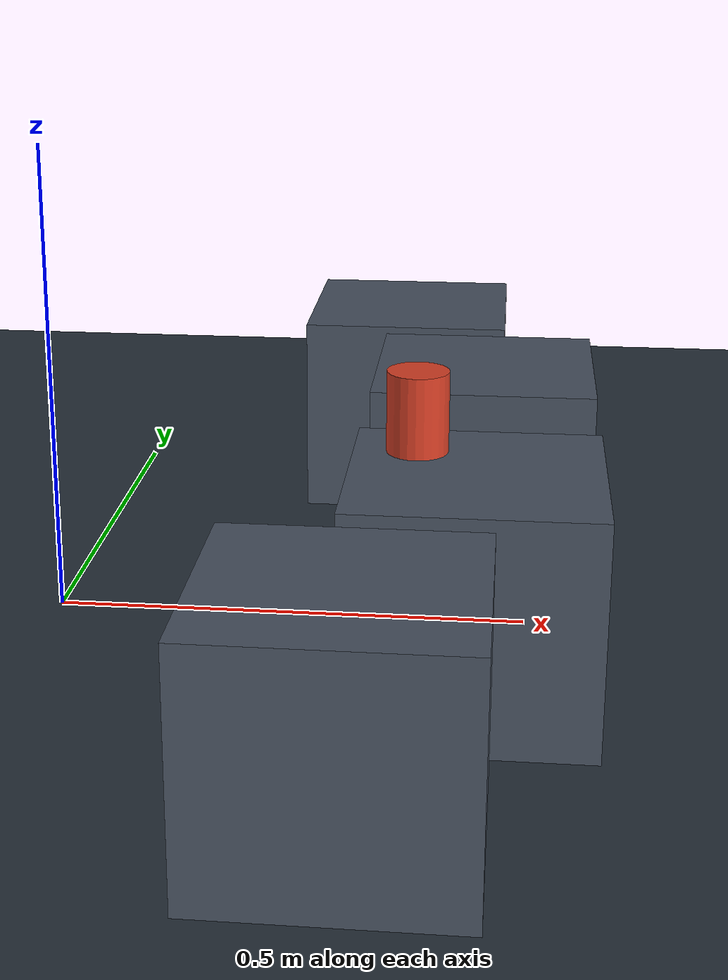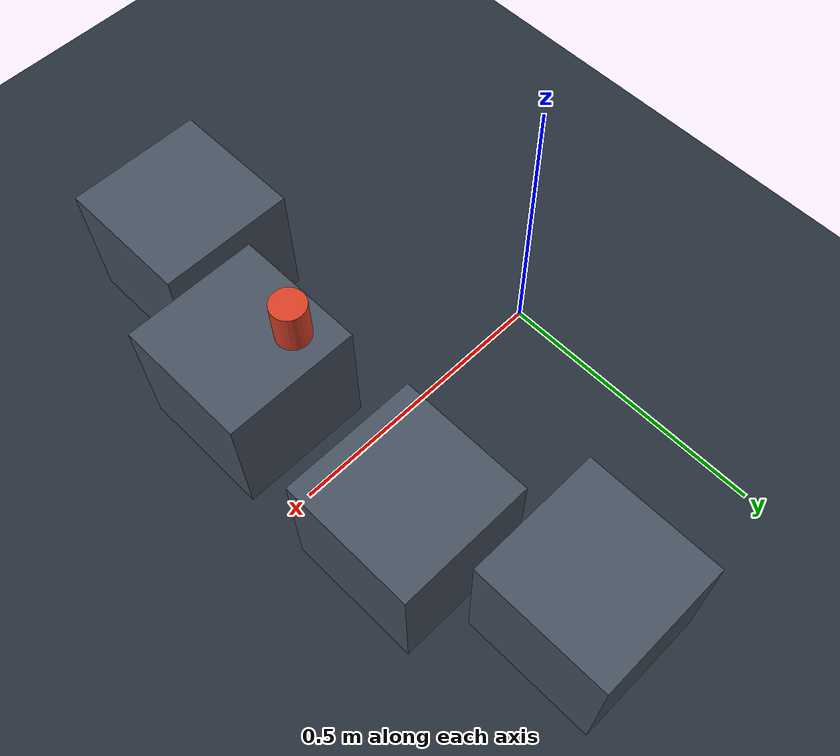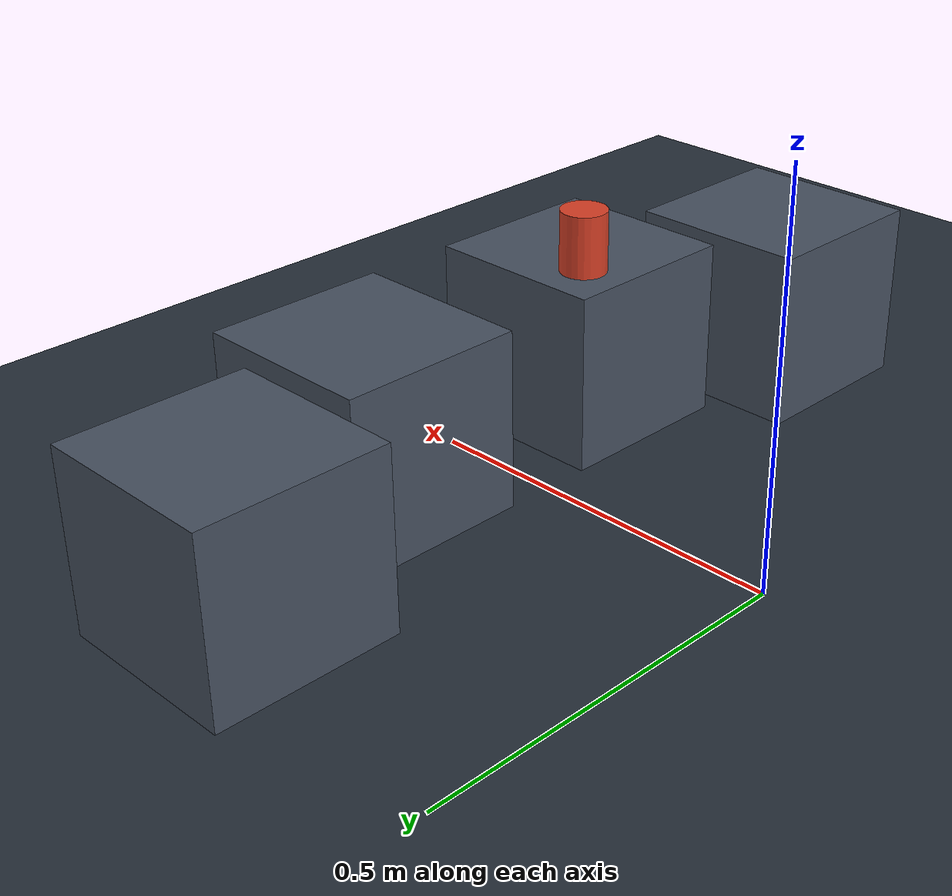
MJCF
<?xml version='1.0' encoding='utf-8'?>
<mujoco model="drok_arm_scene">
  <statistic center="0 0 0.45" extent="1.2" />
  <visual>
    <headlight diffuse="0.7 0.7 0.7" ambient="0.25 0.25 0.25" specular="0.1 0.1 0.1" />
    <rgba haze="0.15 0.20 0.25 1" />
    <global azimuth="135" elevation="-20" />
  </visual>
  <asset>
    <texture type="skybox" builtin="gradient" rgb1="0.35 0.45 0.60" rgb2="0.05 0.05 0.08" width="512" height="3072" />
    <texture type="2d" name="groundplane" builtin="checker" mark="edge" rgb1="0.20 0.25 0.30" rgb2="0.10 0.12 0.15" markrgb="0.8 0.8 0.8" width="300" height="300" />
    <material name="groundplane" texture="groundplane" texuniform="true" texrepeat="5 5" />
  </asset>
  <worldbody>
    <light pos="0 0 2" dir="0 0 -1" directional="true" />
    <geom name="floor" type="plane" size="3 3 0.1" material="groundplane" contype="1" conaffinity="1" />
    <geom name="pickup_pedestal" type="box" pos="0.450 0.180 0.116" size="0.120 0.120 0.116" rgba="0.28 0.32 0.38 1" friction="1.0 0.005 0.0001" contype="1" conaffinity="1" />
    <geom name="place_pedestal" type="box" pos="0.450 -0.180 0.116" size="0.120 0.120 0.116" rgba="0.28 0.32 0.38 1" friction="1.0 0.005 0.0001" contype="1" conaffinity="1" />
    <geom name="right_pick_pedestal" type="box" pos="0.350 -0.450 0.116" size="0.120 0.120 0.116" rgba="0.28 0.32 0.38 1" friction="1.0 0.005 0.0001" contype="1" conaffinity="1" />
    <geom name="left_place_pedestal" type="box" pos="0.350 0.450 0.116" size="0.120 0.120 0.116" rgba="0.28 0.32 0.38 1" friction="1.0 0.005 0.0001" contype="1" conaffinity="1" />
    <body name="pickup_cube" pos="0.391498000 -0.124411000 0.272000000">
      <freejoint name="pickup_cube_freejoint" />
      <geom name="pickup_cube_geom" type="cylinder" size="0.03 0.04" density="500" rgba="0.85 0.25 0.15 1" friction="1.5 0.01 0.001" condim="4" contype="1" conaffinity="1" />
    </body>
  </worldbody>
</mujoco>
